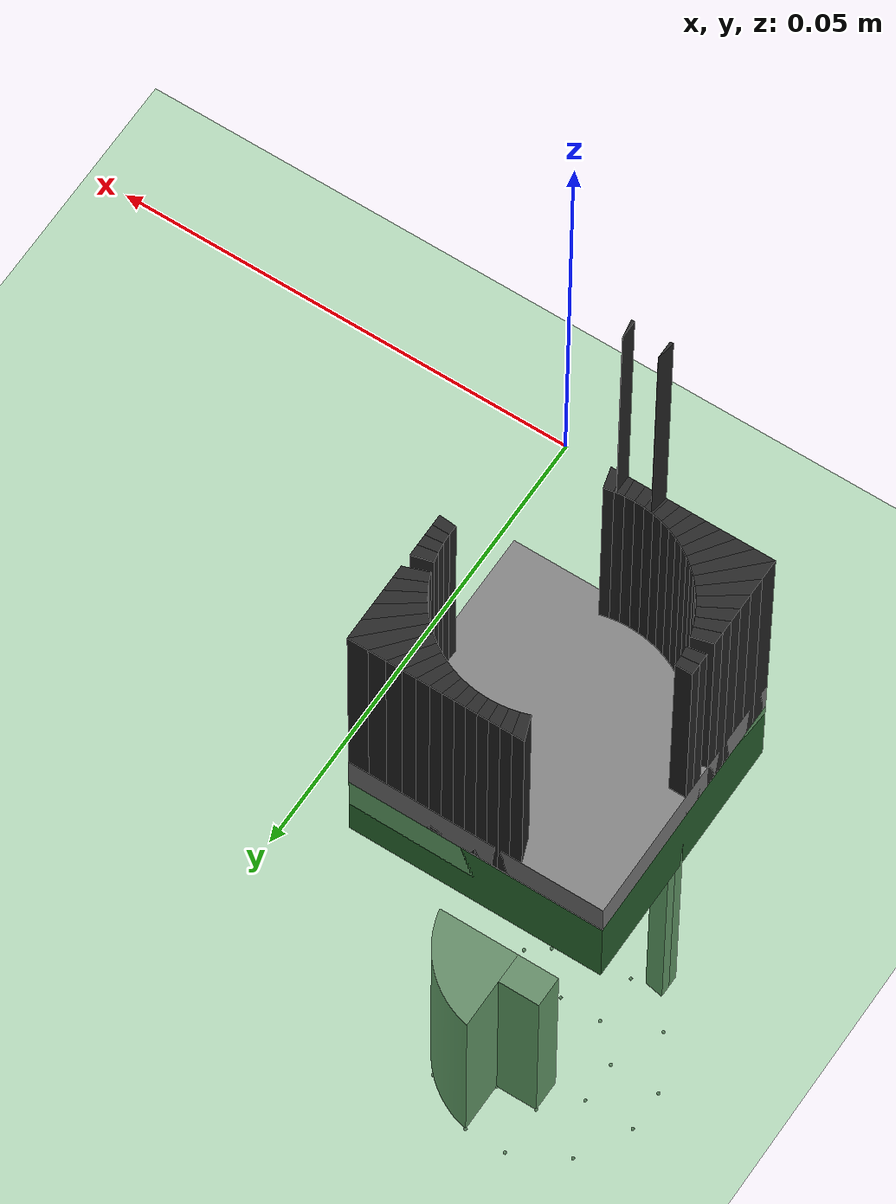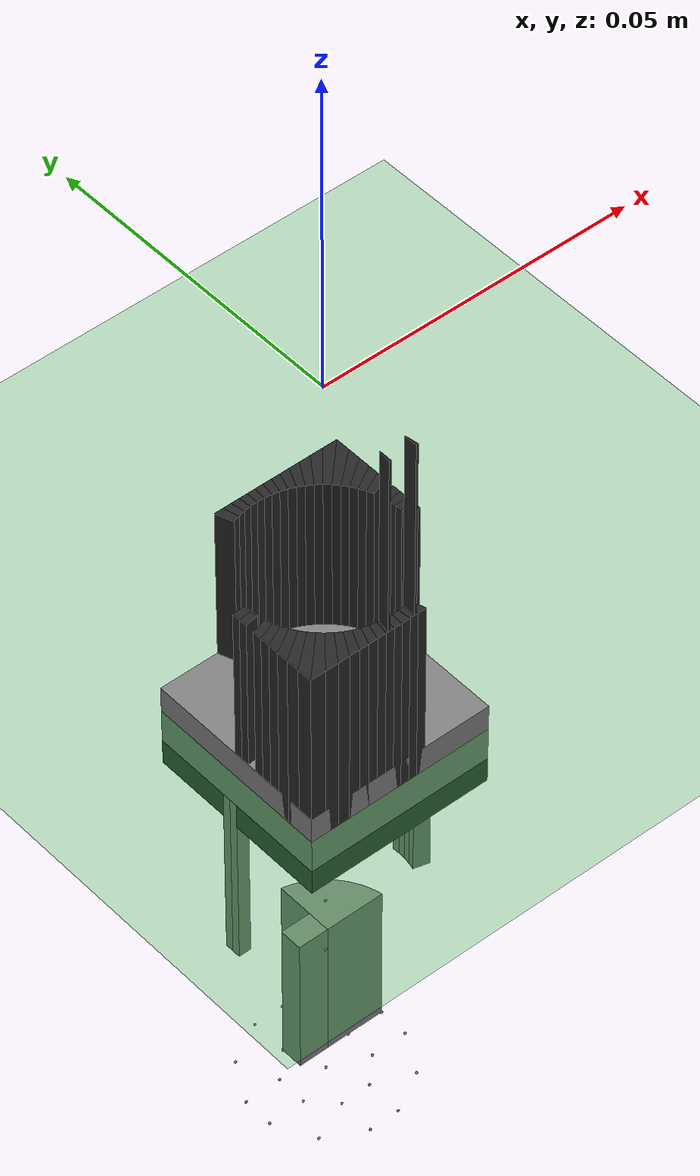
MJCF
<mujoco>
    <option timestep=".001">
        <flag energy="enable" contact="enable" override="enable"/>
    </option>

    <default>
        <default class="hole_geom">
            <geom xyaxes="1 0 0 0 1 0" rgba="0.15 0.15 0.15 1"/>
        </default>
        <site size="0.0002" />
        <geom friction="5" />
    </default>

    <visual>
        <global offwidth="960" offheight="720"/>
    </visual>

    <asset>
        <mesh name="peg0" file="../asset/slotted_circle_peg/slotted_circle_peg_decomposition/Body1.stl" />
        <mesh name="peg1" file="../asset/slotted_circle_peg/slotted_circle_peg_decomposition/Body2.stl" />
        <mesh name="peg2" file="../asset/slotted_circle_peg/slotted_circle_peg_decomposition/Body3.stl" />
        <mesh name="peg3" file="../asset/slotted_circle_peg/slotted_circle_peg_decomposition/Body4.stl" />
        <mesh name="peg4" file="../asset/slotted_circle_peg/slotted_circle_peg_decomposition/Body5.stl" />
        <mesh name="peg5" file="../asset/slotted_circle_peg/slotted_circle_peg_decomposition/Body6.stl" />
        <mesh name="peg6" file="../asset/slotted_circle_peg/slotted_circle_peg_decomposition/Body7.stl" />
        <mesh name="peg7" file="../asset/slotted_circle_peg/slotted_circle_peg_decomposition/Body8.stl" />
        <mesh name="peg8" file="../asset/slotted_circle_peg/slotted_circle_peg_decomposition/Body9.stl" />

        <mesh name="hole1" file="../asset/slotted_circle_peg/slotted_circle_hole_decomposition/Body1.stl" />
        <mesh name="hole2" file="../asset/slotted_circle_peg/slotted_circle_hole_decomposition/Body2.stl" />
        <mesh name="hole3" file="../asset/slotted_circle_peg/slotted_circle_hole_decomposition/Body3.stl" />
        <mesh name="hole4" file="../asset/slotted_circle_peg/slotted_circle_hole_decomposition/Body4.stl" />
        <mesh name="hole5" file="../asset/slotted_circle_peg/slotted_circle_hole_decomposition/Body5.stl" />
        <mesh name="hole6" file="../asset/slotted_circle_peg/slotted_circle_hole_decomposition/Body6.stl" />
        <mesh name="hole7" file="../asset/slotted_circle_peg/slotted_circle_hole_decomposition/Body7.stl" />
        <mesh name="hole8" file="../asset/slotted_circle_peg/slotted_circle_hole_decomposition/Body8.stl" />
        <mesh name="hole9" file="../asset/slotted_circle_peg/slotted_circle_hole_decomposition/Body9.stl" />
        <mesh name="hole10" file="../asset/slotted_circle_peg/slotted_circle_hole_decomposition/Body10.stl" />
        <mesh name="hole11" file="../asset/slotted_circle_peg/slotted_circle_hole_decomposition/Body11.stl" />
        <mesh name="hole12" file="../asset/slotted_circle_peg/slotted_circle_hole_decomposition/Body12.stl" />
        <mesh name="hole13" file="../asset/slotted_circle_peg/slotted_circle_hole_decomposition/Body13.stl" />
        <mesh name="hole14" file="../asset/slotted_circle_peg/slotted_circle_hole_decomposition/Body14.stl" />
        <mesh name="hole15" file="../asset/slotted_circle_peg/slotted_circle_hole_decomposition/Body15.stl" />
        <mesh name="hole16" file="../asset/slotted_circle_peg/slotted_circle_hole_decomposition/Body16.stl" />
        <mesh name="hole17" file="../asset/slotted_circle_peg/slotted_circle_hole_decomposition/Body17.stl" />
        <mesh name="hole18" file="../asset/slotted_circle_peg/slotted_circle_hole_decomposition/Body18.stl" />
        <mesh name="hole19" file="../asset/slotted_circle_peg/slotted_circle_hole_decomposition/Body19.stl" />
        <mesh name="hole20" file="../asset/slotted_circle_peg/slotted_circle_hole_decomposition/Body20.stl" />
        <mesh name="hole21" file="../asset/slotted_circle_peg/slotted_circle_hole_decomposition/Body21.stl" />
        <mesh name="hole22" file="../asset/slotted_circle_peg/slotted_circle_hole_decomposition/Body22.stl" />
        <mesh name="hole23" file="../asset/slotted_circle_peg/slotted_circle_hole_decomposition/Body23.stl" />
        <mesh name="hole24" file="../asset/slotted_circle_peg/slotted_circle_hole_decomposition/Body24.stl" />
        <mesh name="hole25" file="../asset/slotted_circle_peg/slotted_circle_hole_decomposition/Body25.stl" />
        <mesh name="hole26" file="../asset/slotted_circle_peg/slotted_circle_hole_decomposition/Body26.stl" />
        <mesh name="hole27" file="../asset/slotted_circle_peg/slotted_circle_hole_decomposition/Body27.stl" />
        <mesh name="hole28" file="../asset/slotted_circle_peg/slotted_circle_hole_decomposition/Body28.stl" />
        <mesh name="hole29" file="../asset/slotted_circle_peg/slotted_circle_hole_decomposition/Body29.stl" />
        <mesh name="hole30" file="../asset/slotted_circle_peg/slotted_circle_hole_decomposition/Body30.stl" />
        <mesh name="hole31" file="../asset/slotted_circle_peg/slotted_circle_hole_decomposition/Body31.stl" />
        <mesh name="hole32" file="../asset/slotted_circle_peg/slotted_circle_hole_decomposition/Body32.stl" />
        <mesh name="hole33" file="../asset/slotted_circle_peg/slotted_circle_hole_decomposition/Body33.stl" />
        <mesh name="hole34" file="../asset/slotted_circle_peg/slotted_circle_hole_decomposition/Body34.stl" />
        <mesh name="hole35" file="../asset/slotted_circle_peg/slotted_circle_hole_decomposition/Body35.stl" />
        <mesh name="hole36" file="../asset/slotted_circle_peg/slotted_circle_hole_decomposition/Body36.stl" />
        <mesh name="hole37" file="../asset/slotted_circle_peg/slotted_circle_hole_decomposition/Body37.stl" />
        <mesh name="hole38" file="../asset/slotted_circle_peg/slotted_circle_hole_decomposition/Body38.stl" />
        <mesh name="hole39" file="../asset/slotted_circle_peg/slotted_circle_hole_decomposition/Body39.stl" />
        <mesh name="hole40" file="../asset/slotted_circle_peg/slotted_circle_hole_decomposition/Body40.stl" />
        <mesh name="hole41" file="../asset/slotted_circle_peg/slotted_circle_hole_decomposition/Body41.stl" />
        <mesh name="hole42" file="../asset/slotted_circle_peg/slotted_circle_hole_decomposition/Body42.stl" />
        <mesh name="hole43" file="../asset/slotted_circle_peg/slotted_circle_hole_decomposition/Body43.stl" />
        <mesh name="hole44" file="../asset/slotted_circle_peg/slotted_circle_hole_decomposition/Body44.stl" />
        <mesh name="hole45" file="../asset/slotted_circle_peg/slotted_circle_hole_decomposition/Body45.stl" />

        <texture name="grid" type="2d" file="../asset/green_tex.png" />
        <material name="grid" texture="grid" texrepeat="6 6" texuniform="true" reflectance="0.0" />

    </asset>

    <worldbody>
        <site name="world" pos="0 0 0" size="0.0001" />
        <light name="top-light" pos="0.1 -.2 0.8" mode="targetbodycom" target="peg"
            castshadow="false" ambient=".4 .4 .4" />

        <geom name="ground" type="plane" pos="0 0 -0.06" size="1 1 0.01" material="grid"
            friction=".1" />

        <body name="hole" pos="0 0 -0.03">
            <inertial pos="0 0 0" mass="0.1" diaginertia="0.1 0.1 0.1" />

            <geom type="mesh" mesh="hole1" class="hole_geom"/>
            <geom type="mesh" mesh="hole2" class="hole_geom"/>
            <geom type="mesh" mesh="hole3" class="hole_geom"/>
            <geom type="mesh" mesh="hole4" class="hole_geom"/>
            <geom type="mesh" mesh="hole5" class="hole_geom"/>
            <geom type="mesh" mesh="hole6" class="hole_geom"/>
            <geom type="mesh" mesh="hole7" class="hole_geom"/>
            <geom type="mesh" mesh="hole8" class="hole_geom"/>
            <geom type="mesh" mesh="hole9" class="hole_geom"/>
            <geom type="mesh" mesh="hole10" class="hole_geom" />
            <geom type="mesh" mesh="hole11" class="hole_geom" />
            <geom type="mesh" mesh="hole12" class="hole_geom" />
            <geom type="mesh" mesh="hole13" class="hole_geom" />
            <geom type="mesh" mesh="hole14" class="hole_geom" />
            <geom type="mesh" mesh="hole15" class="hole_geom" />
            <geom type="mesh" mesh="hole16" class="hole_geom" />
            <geom type="mesh" mesh="hole17" class="hole_geom" />
            <geom type="mesh" mesh="hole18" class="hole_geom" />
            <geom type="mesh" mesh="hole19" class="hole_geom" />
            <geom type="mesh" mesh="hole20" class="hole_geom" />
            <geom type="mesh" mesh="hole21" class="hole_geom" />
            <geom type="mesh" mesh="hole22" class="hole_geom" />
            <geom type="mesh" mesh="hole23" class="hole_geom" />
            <geom type="mesh" mesh="hole24" class="hole_geom" />
            <geom type="mesh" mesh="hole25" class="hole_geom" />
            <geom type="mesh" mesh="hole26" class="hole_geom" />
            <geom type="mesh" mesh="hole27" class="hole_geom" />
            <geom type="mesh" mesh="hole28" class="hole_geom" />
            <geom type="mesh" mesh="hole29" class="hole_geom" />
            <geom type="mesh" mesh="hole30" class="hole_geom" />
            <geom type="mesh" mesh="hole31" class="hole_geom" />
            <geom type="mesh" mesh="hole32" class="hole_geom" />
            <geom type="mesh" mesh="hole33" class="hole_geom" />
            <geom type="mesh" mesh="hole34" class="hole_geom" />
            <geom type="mesh" mesh="hole35" class="hole_geom" />
            <geom type="mesh" mesh="hole36" class="hole_geom" />
            <geom type="mesh" mesh="hole37" class="hole_geom" />
            <geom type="mesh" mesh="hole38" class="hole_geom" />
            <geom type="mesh" mesh="hole39" class="hole_geom" />
            <geom type="mesh" mesh="hole40" class="hole_geom" />
            <geom type="mesh" mesh="hole41" class="hole_geom" />
            <geom type="mesh" mesh="hole42" class="hole_geom" />
            <geom type="mesh" mesh="hole43" class="hole_geom" />
            <geom type="mesh" mesh="hole44" class="hole_geom" />
            <geom type="mesh" mesh="hole45" class="hole_geom" />

        </body>

        <body name="flage" pos="0 0 0">

            <site name="peg/external/motor" pos="0 0 0" />

            <camera name="track" mode="track" pos="-0.03 0.0575 -0.098" euler="-60 -30 180" fovy="69.4"/>

            <joint name="trans_x" type="slide" axis="1 0 0" limited="false"/>
            <joint name="trans_y" type="slide" axis="0 1 0" limited="false"/>
            <joint name="trans_z" type="slide" axis="0 0 1" limited="false"/>
            <joint name="hinge_x" type="hinge" axis="1 0 0" limited="false"/>
            <joint name="hinge_y" type="hinge" axis="0 1 0" limited="false"/>
            <joint name="hinge_z" type="hinge" axis="0 0 1" limited="false"/>

            <body name="peg" pos="0 0 -0.0958">

                <inertial pos="-0.00665 0.00795 0.08289" mass="1.41" diaginertia="0.1 0.1 0.1" />

                <site name="peg/origin" pos="0 0 0" />
                <site name="peg/peg" pos="0 0 -0.01" />
                <site name="peg/tip" pos="0 0 -0.035" />

                <site name="peg/peg_bottom_1"   pos="0.0025      0.00625     -0.035" />
                <site name="peg/peg_bottom_2"   pos="0.0025      0.01225     -0.035" />
                <site name="peg/peg_bottom_3"   pos="0.01225     0.0025      -0.035" />
                <site name="peg/peg_bottom_4"   pos="0.00625     0.0025      -0.035" />
                <site name="peg/peg_bottom_5"   pos="-0.0025     0.00625     -0.035" />
                <site name="peg/peg_bottom_6"   pos="-0.0025     0.01225     -0.035" />
                <site name="peg/peg_bottom_7"   pos="-0.01225    0.0025      -0.035" />
                <site name="peg/peg_bottom_8"   pos="-0.00625    0.0025      -0.035" />
                <site name="peg/peg_bottom_9"   pos="-0.0025     -0.00625    -0.035" />
                <site name="peg/peg_bottom_10"  pos="-0.0025     -0.01225    -0.035" />
                <site name="peg/peg_bottom_11"  pos="-0.01225    -0.0025     -0.035" />
                <site name="peg/peg_bottom_12"  pos="-0.00625    -0.0025     -0.035" />
                <site name="peg/peg_bottom_13"  pos="0.0025      -0.00625    -0.035" />
                <site name="peg/peg_bottom_14"  pos="0.0025      -0.01225    -0.035" />
                <site name="peg/peg_bottom_15"  pos="0.01225     -0.0025     -0.035" />
                <site name="peg/peg_bottom_16"  pos="0.00625     -0.0025     -0.035" />

                <!-- SITES FOR CIRCLE ARCS -->
                <site name="peg/peg_bottom_17"  pos="-0.008839     -0.008839     -0.035" />
                <site name="peg/peg_bottom_18"  pos="-0.008839     0.008839     -0.035" />
                <site name="peg/peg_bottom_19"  pos="0.008839     0.008839     -0.035" />
                <site name="peg/peg_bottom_20"  pos="0.008839     -0.008839     -0.035" />

                <geom type="mesh" mesh="peg0" xyaxes="1 0 0 0 -1 0" />
                <geom type="mesh" mesh="peg1" xyaxes="1 0 0 0 -1 0" />
                <geom type="mesh" mesh="peg2" xyaxes="1 0 0 0 -1 0" />
                <geom type="mesh" mesh="peg3" xyaxes="1 0 0 0 -1 0" />
                <geom type="mesh" mesh="peg4" xyaxes="1 0 0 0 -1 0" />
                <geom type="mesh" mesh="peg5" xyaxes="1 0 0 0 -1 0" />
                <geom type="mesh" mesh="peg6" xyaxes="1 0 0 0 -1 0" />
                <geom type="mesh" mesh="peg7" xyaxes="1 0 0 0 -1 0" />
                <geom type="mesh" mesh="peg8" xyaxes="1 0 0 0 -1 0" />

            </body>
        </body>

    </worldbody>

    <custom>
        <numeric name="sites_on_peg_bottom" data="16"/>
    </custom>

    <actuator>
        <position name="x" forcelimited="true" forcerange="-20 20" joint="trans_x" kp="3000" kv="50" />
        <position name="y" forcelimited="true" forcerange="-20 20" joint="trans_y" kp="3000" kv="50" />
        <position name="z" forcelimited="true" forcerange="-20 20" joint="trans_z" kp="3000" kv="50" />
        <position name="rx" forcelimited="true" forcerange="-5 5" joint="hinge_x" kp="50" kv="5" />
        <position name="ry" forcelimited="true" forcerange="-5 5" joint="hinge_y" kp="50" kv="5"/>
        <position name="rz" forcelimited="true" forcerange="-5 5" joint="hinge_z" kp="50" kv="5"/>
    </actuator>

    <sensor>
        <force name="force_sensor" site="peg/external/motor" />
        <torque name="torque_sensor" site="peg/external/motor" />
        <framepos name="peg_pos" objtype="site" objname="peg/peg"/>
        <framequat name="peg_quat" objtype="site" objname="peg/peg"/>
    </sensor>
</mujoco>
